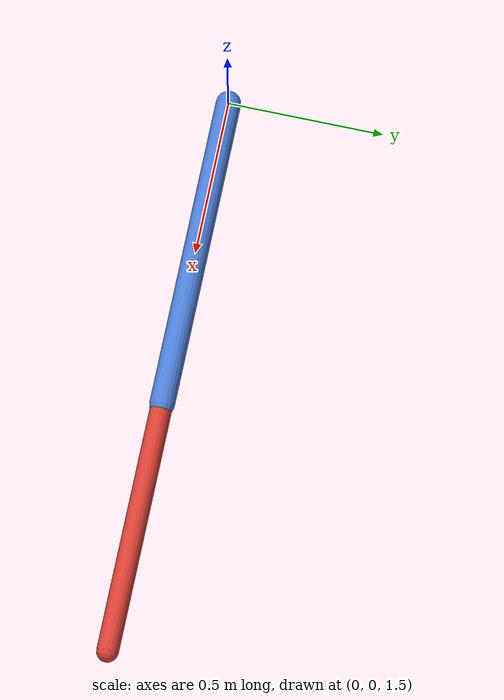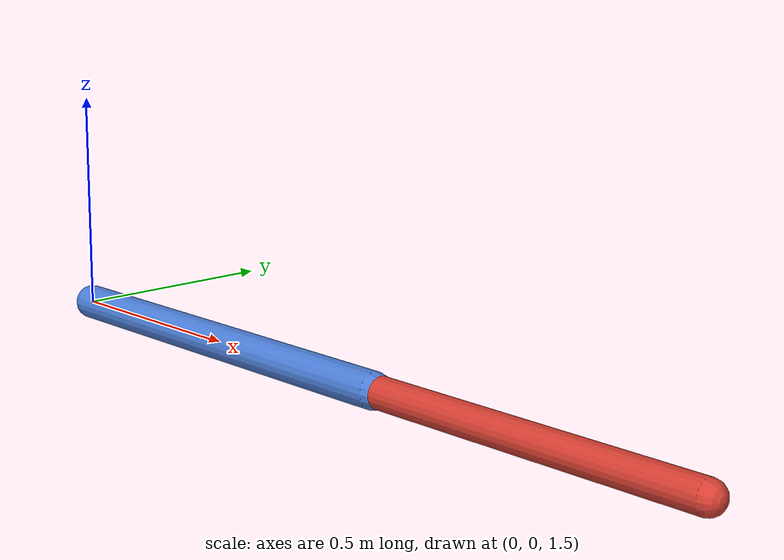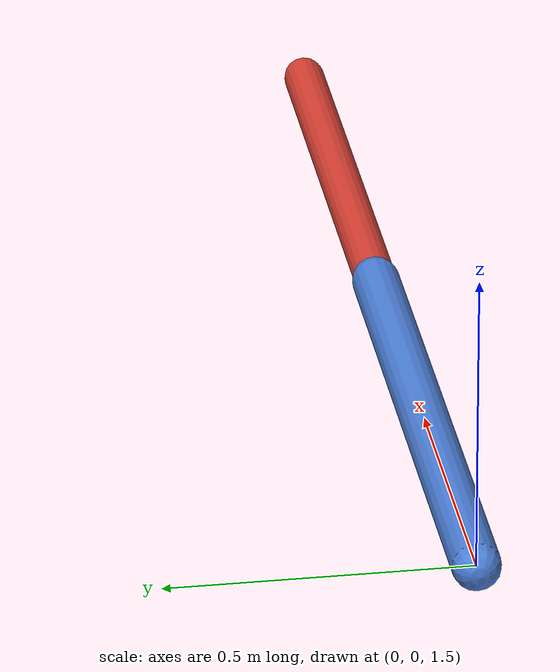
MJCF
<mujoco model="2dof_arm">
    <compiler angle="radian" inertiafromgeom="true"/>
    <option gravity="0 0 0" timestep="0.002" integrator="RK4"/>

    <default>
        <geom contype="0" conaffinity="0"/>
    </default>

    <worldbody>
        <body name="upper_arm" pos="0 0 1.5">
            <joint name="shoulder" type="hinge" axis="0 -1 0"
                   limited="true" range="-3.14159 3.14159" damping="10.0"/>
            <geom name="upper_geom" type="capsule" fromto="0 0 0 1.0 0 0"
                  size="0.04" mass="1.0" rgba="0.3 0.5 0.85 1"/>

            <body name="forearm" pos="1.0 0 0">
                <joint name="elbow" type="hinge" axis="0 -1 0"
                       limited="true" range="-2.6 2.6" damping="5.0"/>
                <geom name="forearm_geom" type="capsule" fromto="0 0 0 0.8 0 0"
                      size="0.035" mass="0.5" rgba="0.85 0.25 0.2 1"/>
            </body>
        </body>
    </worldbody>

    <actuator>
        <motor name="shoulder_motor" joint="shoulder" gear="80"
               ctrllimited="true" ctrlrange="-1 1"/>
        <motor name="elbow_motor" joint="elbow" gear="40"
               ctrllimited="true" ctrlrange="-1 1"/>
    </actuator>
</mujoco>
